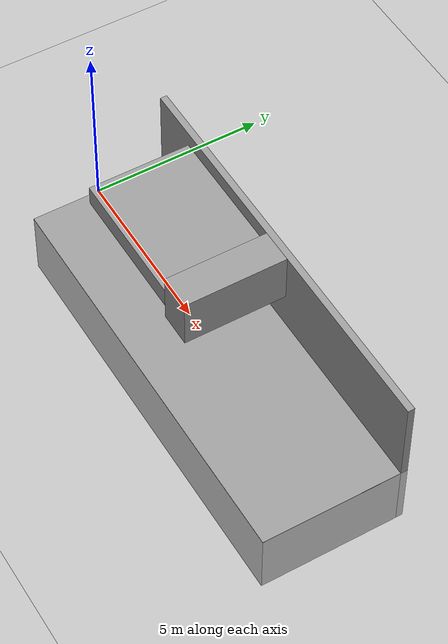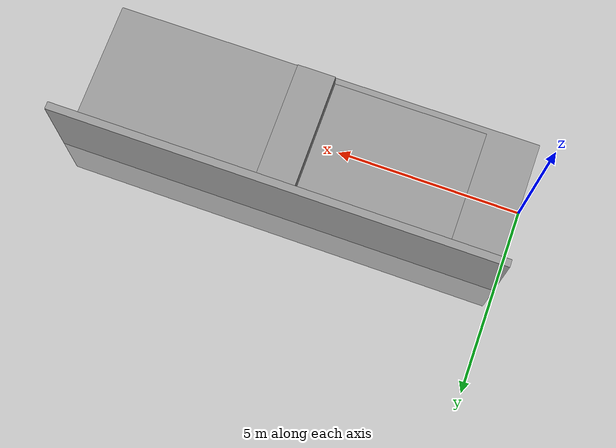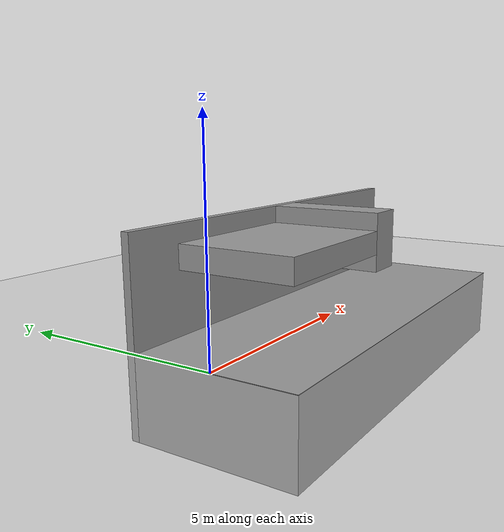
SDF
<sdf version="1.6">
 <world name="default">
  <light name="sun" type="directional">
   <diffuse>0.8 0.8 0.8 1</diffuse>
   <specular>0.2 0.2 0.2 1</specular>
   <attenuation>
    <range>1000</range>
    <constant>0.9</constant>
    <linear>0.01</linear>
    <quadratic>0.001</quadratic>
   </attenuation>
   <direction>-0.5 0.1 -0.9</direction>
  </light>
  <model name="ground_plane">
   <static>1</static>
   <link name="link">
    <collision name="collision">
     <geometry><plane><normal>0 0 1</normal><size>100 100</size></plane></geometry>
     <surface><friction><ode><mu>100</mu><mu2>50</mu2></ode></friction></surface>
    </collision>
    <visual name="visual">
     <cast_shadows>0</cast_shadows>
     <geometry><plane><normal>0 0 1</normal><size>100 100</size></plane></geometry>
     <material>
      <script><uri>file://media/materials/scripts/gazebo.material</uri><name>Gazebo/Grey</name></script>
     </material>
    </visual>
   </link>
  </model>
  <gravity>0 0 -9.8</gravity>
  <magnetic_field>6e-06 2.3e-05 -4.2e-05</magnetic_field>
  <atmosphere type="adiabatic"/>
  <physics name="default_physics" default="0" type="ode">
   <max_step_size>0.001</max_step_size>
   <real_time_factor>1</real_time_factor>
   <real_time_update_rate>1000</real_time_update_rate>
  </physics>
  <scene><ambient>0.4 0.4 0.4 1</ambient><background>0.7 0.7 0.7 1</background><shadows>1</shadows></scene>
  <spherical_coordinates>
   <surface_model>EARTH_WGS84</surface_model>
   <latitude_deg>0</latitude_deg>
   <longitude_deg>0</longitude_deg>
   <elevation>0</elevation>
   <heading_deg>0</heading_deg>
  </spherical_coordinates>
  <plugin name="gazebo_octomap" filename="libBuildOctomapPlugin.so"/>
  <model name="stage_2_model">
   <link name="link_0">
    <inertial>
     <mass>1000</mass>
     <inertia>
      <ixx>1666.67</ixx>
      <ixy>0</ixy>
      <ixz>0</ixz>
      <iyy>13146.6666667</iyy>
      <iyz>0</iyz>
      <izz>14146.6666667</izz>
     </inertia>
    </inertial>
    <pose>6.0 -0.0 -1.0 0 -0 0</pose>
    <visual name="visual">
     <geometry><box><size>12 4 2</size></box></geometry>
     <material>
      <lighting>1</lighting>
      <script><uri>file://media/materials/scripts/gazebo.material</uri><name>Gazebo/Grey</name></script>
      <shader type="pixel"><normal_map>__default__</normal_map></shader>
      <emissive>0.2 0.2 0.2 1</emissive>
      <ambient>0.6 0.6 0.6 1</ambient>
      <diffuse>0.9 0.9 0.9 1</diffuse>
      <specular>0.1 0.1 0.1 1</specular>
     </material>
    </visual>
    <collision name="collision">
     <geometry><box><size>12 4 2</size></box></geometry>
     <surface>
      <friction>
       <ode><mu>1</mu><mu2>1</mu2><fdir1>0 0 0</fdir1><slip1>0</slip1><slip2>0</slip2></ode>
       <torsional>
        <coefficient>1</coefficient>
        <patch_radius>0</patch_radius>
        <surface_radius>0</surface_radius>
        <use_patch_radius>1</use_patch_radius>
        <ode><slip>0</slip></ode>
       </torsional>
      </friction>
      <bounce><restitution_coefficient>0</restitution_coefficient><threshold>1e+06</threshold></bounce>
      <contact>
       <collide_without_contact>0</collide_without_contact>
       <collide_without_contact_bitmask>1</collide_without_contact_bitmask>
       <collide_bitmask>1</collide_bitmask>
       <ode>
        <soft_cfm>0</soft_cfm>
        <soft_erp>0.2</soft_erp>
        <kp>1e+13</kp>
        <kd>1</kd>
        <max_vel>0.01</max_vel>
        <min_depth>0</min_depth>
       </ode>
       <bullet>
        <split_impulse>1</split_impulse>
        <split_impulse_penetration_threshold>-0.01</split_impulse_penetration_threshold>
        <soft_cfm>0</soft_cfm>
        <soft_erp>0.2</soft_erp>
        <kp>1e+13</kp>
        <kd>1</kd>
       </bullet>
      </contact>
     </surface>
    </collision>
   </link>
   <link name="link_1">
    <pose>6.0 0.5 1.85 0 -0 0</pose>
    <inertial>
     <mass>2.87601</mass>
     <inertia>
      <ixx>2.696259375</ixx>
      <ixy>0</ixy>
      <ixz>0</ixz>
      <iyy>0.778919375</iyy>
      <iyz>0</iyz>
      <izz>2.396675</izz>
     </inertia>
    </inertial>
    <visual name="visual">
     <geometry><box><size>1 3 1.5</size></box></geometry>
     <material>
      <lighting>1</lighting>
      <script><uri>file://media/materials/scripts/gazebo.material</uri><name>Gazebo/Grey</name></script>
      <shader type="pixel"><normal_map>__default__</normal_map></shader>
      <emissive>0 0 0 1</emissive>
      <ambient>0.3 0.3 0.3 1</ambient>
      <diffuse>0.7 0.7 0.7 1</diffuse>
      <specular>0.01 0.01 0.01 1</specular>
     </material>
    </visual>
    <collision name="collision">
     <geometry><box><size>1 3 1.5</size></box></geometry>
     <surface>
      <friction>
       <ode><mu>1</mu><mu2>1</mu2><fdir1>0 0 0</fdir1><slip1>0</slip1><slip2>0</slip2></ode>
       <torsional>
        <coefficient>1</coefficient>
        <patch_radius>0</patch_radius>
        <surface_radius>0</surface_radius>
        <use_patch_radius>1</use_patch_radius>
        <ode><slip>0</slip></ode>
       </torsional>
      </friction>
      <bounce><restitution_coefficient>0</restitution_coefficient><threshold>1e+06</threshold></bounce>
      <contact>
       <collide_without_contact>0</collide_without_contact>
       <collide_without_contact_bitmask>1</collide_without_contact_bitmask>
       <collide_bitmask>1</collide_bitmask>
       <ode>
        <soft_cfm>0</soft_cfm>
        <soft_erp>0.2</soft_erp>
        <kp>1e+13</kp>
        <kd>1</kd>
        <max_vel>0.01</max_vel>
        <min_depth>0</min_depth>
       </ode>
       <bullet>
        <split_impulse>1</split_impulse>
        <split_impulse_penetration_threshold>-0.01</split_impulse_penetration_threshold>
        <soft_cfm>0</soft_cfm>
        <soft_erp>0.2</soft_erp>
        <kp>1e+13</kp>
        <kd>1</kd>
       </bullet>
      </contact>
     </surface>
    </collision>
   </link>
   <link name="link_2">
    <pose>6.0 2.1 0.3 0 -0 0</pose>
    <inertial>
     <mass>10.1153</mass>
     <inertia><ixx>10.422</ixx><ixy>0</ixy><ixz>0</ixz><iyy>10 5.109</iyy><iyz>0</iyz><izz>84.8268</izz></inertia>
    </inertial>
    <visual name="visual">
     <geometry><box><size>12 0.2 4.6</size></box></geometry>
     <material>
      <lighting>1</lighting>
      <script><uri>file://media/materials/scripts/gazebo.material</uri><name>Gazebo/Grey</name></script>
      <shader type="pixel"><normal_map>__default__</normal_map></shader>
      <emissive>0.2 0.2 0.2 1</emissive>
      <ambient>0.6 0.6 0.6 1</ambient>
      <diffuse>0.9 0.9 0.9 1</diffuse>
      <specular>0.1 0.1 0.1 1</specular>
     </material>
    </visual>
    <collision name="collision">
     <geometry><box><size>12 0.2 4.6</size></box></geometry>
     <surface>
      <friction>
       <ode><mu>1</mu><mu2>1</mu2><fdir1>0 0 0</fdir1><slip1>0</slip1><slip2>0</slip2></ode>
       <torsional>
        <coefficient>1</coefficient>
        <patch_radius>0</patch_radius>
        <surface_radius>0</surface_radius>
        <use_patch_radius>1</use_patch_radius>
        <ode><slip>0</slip></ode>
       </torsional>
      </friction>
      <bounce><restitution_coefficient>0</restitution_coefficient><threshold>1e+06</threshold></bounce>
      <contact>
       <collide_without_contact>0</collide_without_contact>
       <collide_without_contact_bitmask>1</collide_without_contact_bitmask>
       <collide_bitmask>1</collide_bitmask>
       <ode>
        <soft_cfm>0</soft_cfm>
        <soft_erp>0.2</soft_erp>
        <kp>1e+13</kp>
        <kd>1</kd>
        <max_vel>0.01</max_vel>
        <min_depth>0</min_depth>
       </ode>
       <bullet>
        <split_impulse>1</split_impulse>
        <split_impulse_penetration_threshold>-0.01</split_impulse_penetration_threshold>
        <soft_cfm>0</soft_cfm>
        <soft_erp>0.2</soft_erp>
        <kp>1e+13</kp>
        <kd>1</kd>
       </bullet>
      </contact>
     </surface>
    </collision>
   </link>
   <link name="link_3">
    <pose>3.5 0.5 1.85 0 -0 0</pose>
    <inertial>
     <mass>2.87601</mass>
     <inertia>
      <ixx>2.243288</ixx>
      <ixy>0</ixy>
      <ixz>0</ixz>
      <iyy>3.920960</iyy>
      <iyz>0</iyz>
      <izz>5.991688</izz>
     </inertia>
    </inertial>
    <visual name="visual">
     <geometry><box><size>4 3 0.6</size></box></geometry>
     <material>
      <lighting>1</lighting>
      <script><uri>file://media/materials/scripts/gazebo.material</uri><name>Gazebo/Grey</name></script>
      <shader type="pixel"><normal_map>__default__</normal_map></shader>
      <emissive>0 0 0 1</emissive>
      <ambient>0.2 0.2 0.2 1</ambient>
      <diffuse>0.9 0.9 0.9 1</diffuse>
      <specular>0.01 0.01 0.01 1</specular>
     </material>
    </visual>
    <collision name="collision">
     <geometry><box><size>4 3 0.6</size></box></geometry>
     <surface>
      <friction>
       <ode><mu>1</mu><mu2>1</mu2><fdir1>0 0 0</fdir1><slip1>0</slip1><slip2>0</slip2></ode>
       <torsional>
        <coefficient>1</coefficient>
        <patch_radius>0</patch_radius>
        <surface_radius>0</surface_radius>
        <use_patch_radius>1</use_patch_radius>
        <ode><slip>0</slip></ode>
       </torsional>
      </friction>
      <bounce><restitution_coefficient>0</restitution_coefficient><threshold>1e+06</threshold></bounce>
      <contact>
       <collide_without_contact>0</collide_without_contact>
       <collide_without_contact_bitmask>1</collide_without_contact_bitmask>
       <collide_bitmask>1</collide_bitmask>
       <ode>
        <soft_cfm>0</soft_cfm>
        <soft_erp>0.2</soft_erp>
        <kp>1e+13</kp>
        <kd>1</kd>
        <max_vel>0.01</max_vel>
        <min_depth>0</min_depth>
       </ode>
       <bullet>
        <split_impulse>1</split_impulse>
        <split_impulse_penetration_threshold>-0.01</split_impulse_penetration_threshold>
        <soft_cfm>0</soft_cfm>
        <soft_erp>0.2</soft_erp>
        <kp>1e+13</kp>
        <kd>1</kd>
       </bullet>
      </contact>
     </surface>
    </collision>
   </link>
   <joint name="link_0_JOINT_0" type="fixed">
    <parent>link_0</parent>
    <child>link_2</child>
    <physics>
     <ode><limit><cfm>0</cfm><erp>0.2</erp></limit><suspension><cfm>0</cfm><erp>0.2</erp></suspension></ode>
    </physics>
   </joint>
   <joint name="link_2_JOINT_2" type="fixed">
    <parent>link_2</parent>
    <child>link_1</child>
    <physics>
     <ode><limit><cfm>0</cfm><erp>0.2</erp></limit><suspension><cfm>0</cfm><erp>0.2</erp></suspension></ode>
    </physics>
   </joint>
   <joint name="link_3_JOINT_2" type="fixed">
    <parent>link_2</parent>
    <child>link_3</child>
    <physics>
     <ode><limit><cfm>0</cfm><erp>0.2</erp></limit><suspension><cfm>0</cfm><erp>0.2</erp></suspension></ode>
    </physics>
   </joint>
   <static>0</static>
  </model>
 </world>
</sdf>
